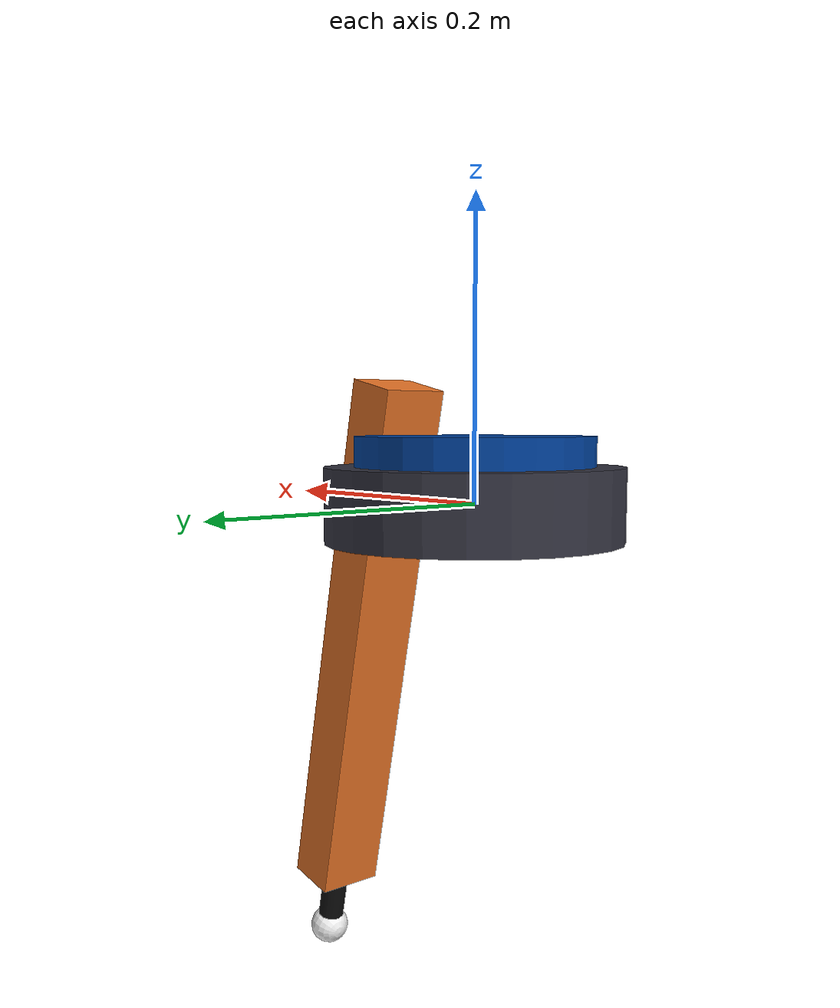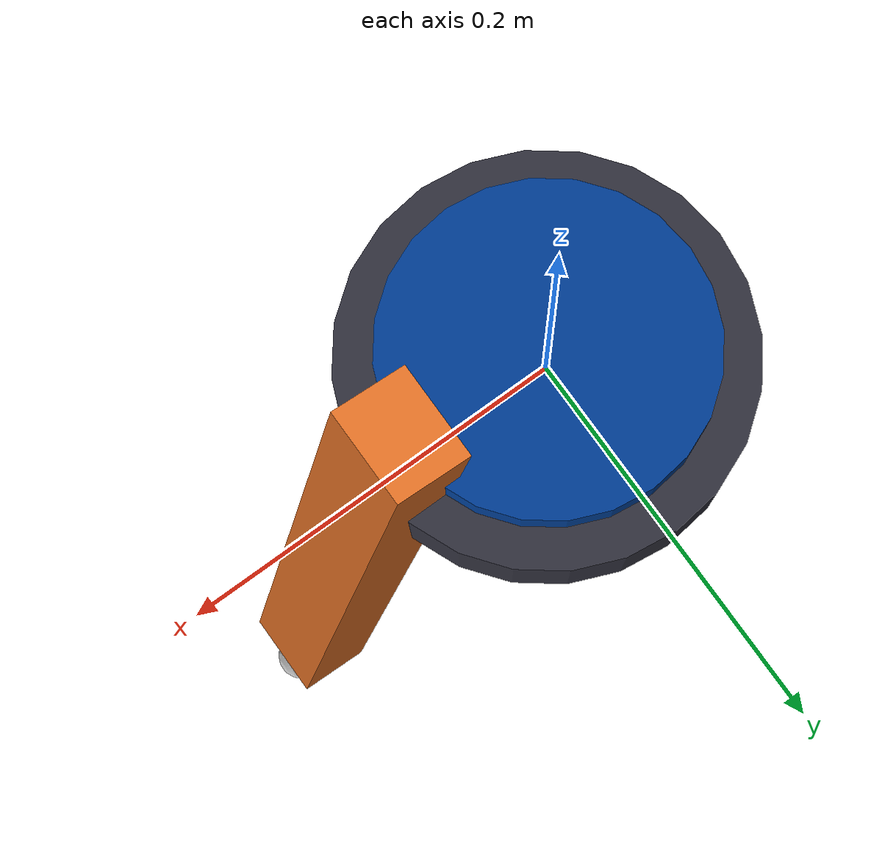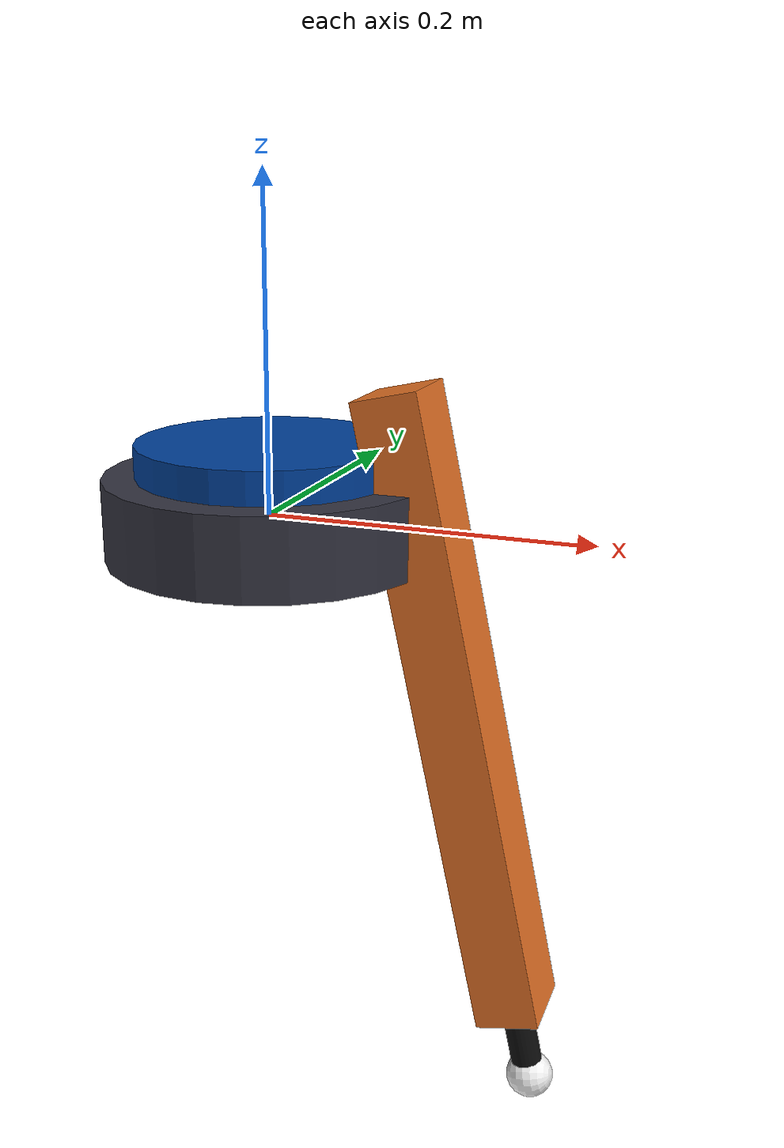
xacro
<?xml version="1.0"?>
<robot name="robot_arm" xmlns:xacro="http://www.ros.org/wiki/xacro">

  <!-- Geometry -->
  <xacro:property name="base_radius" value="0.10"/>
  <xacro:property name="base_height" value="0.05"/>
  <xacro:property name="stage_radius" value="0.08"/>
  <xacro:property name="stage_thickness" value="0.02"/>
  <xacro:property name="arm_length" value="0.40"/>
  <xacro:property name="arm_width" value="0.05"/>
  <xacro:property name="arm_thickness" value="0.04"/>
  <xacro:property name="tool_length" value="0.05"/>
  <xacro:property name="tool_radius" value="0.01"/>

  <!-- Mass approximations (kg) -->
  <xacro:property name="base_mass" value="8.0"/>
  <xacro:property name="stage_mass" value="3.0"/>
  <xacro:property name="arm_mass" value="1.2"/>
  <xacro:property name="tool_mass" value="0.2"/>

  <!-- Joint limits -->
  <xacro:property name="base_rotation_limit" value="3.14159"/>
  <xacro:property name="pivot_min_deg" value="25.0"/>
  <xacro:property name="pivot_max_deg" value="130.0"/>
  <xacro:property name="pivot_min_rad" value="${pivot_min_deg * pi / 180.0}"/>
  <xacro:property name="pivot_max_rad" value="${pivot_max_deg * pi / 180.0}"/>
  <xacro:property name="pivot_mid_rad" value="${0.5 * (pivot_min_rad + pivot_max_rad)}"/>
  <xacro:property name="pivot_span_half" value="${0.5 * (pivot_max_rad - pivot_min_rad)}"/>
  <xacro:property name="pivot_lower" value="${-pivot_span_half}"/>
  <xacro:property name="pivot_upper" value="${pivot_span_half}"/>

  <!-- Helpers -->
  <xacro:macro name="inertial_box" params="mass x y z">
    <inertial>
      <mass value="${mass}"/>
      <origin xyz="0 0 0" rpy="0 0 0"/>
      <inertia
        ixx="${mass / 12.0 * (y*y + z*z)}"
        iyy="${mass / 12.0 * (x*x + z*z)}"
        izz="${mass / 12.0 * (x*x + y*y)}"
        ixy="0" ixz="0" iyz="0"/>
    </inertial>
  </xacro:macro>

  <xacro:macro name="inertial_cylinder" params="mass radius length">
    <inertial>
      <mass value="${mass}"/>
      <origin xyz="0 0 0" rpy="0 0 0"/>
      <inertia
        ixx="${mass / 12.0 * (3 * radius*radius + length*length)}"
        iyy="${mass / 12.0 * (3 * radius*radius + length*length)}"
        izz="${0.5 * mass * radius*radius}"
        ixy="0" ixz="0" iyz="0"/>
    </inertial>
  </xacro:macro>

  <!-- Base link -->
  <link name="base_link">
    <visual>
      <geometry>
        <cylinder radius="${base_radius}" length="${base_height}"/>
      </geometry>
      <material name="BaseGrey">
        <color rgba="0.2 0.2 0.25 1.0"/>
      </material>
    </visual>
    <collision>
      <geometry>
        <cylinder radius="${base_radius}" length="${base_height}"/>
      </geometry>
    </collision>
    <xacro:inertial_cylinder mass="${base_mass}" radius="${base_radius}" length="${base_height}"/>
  </link>

  <!-- Rotating stage -->
  <joint name="base_rotation" type="continuous">
    <parent link="base_link"/>
    <child link="rotating_stage"/>
    <origin xyz="0 0 ${base_height/2 + stage_thickness/2}" rpy="0 0 0"/>
    <axis xyz="0 0 1"/>
    <limit lower="-${base_rotation_limit}" upper="${base_rotation_limit}" effort="20.0" velocity="1.57"/>
    <dynamics damping="0.05" friction="0.0"/>
  </joint>

  <link name="rotating_stage">
    <visual>
      <geometry>
        <cylinder radius="${stage_radius}" length="${stage_thickness}"/>
      </geometry>
      <material name="StageBlue">
        <color rgba="0.0 0.25 0.6 1.0"/>
      </material>
    </visual>
    <collision>
      <geometry>
        <cylinder radius="${stage_radius}" length="${stage_thickness}"/>
      </geometry>
    </collision>
    <xacro:inertial_cylinder mass="${stage_mass}" radius="${stage_radius}" length="${stage_thickness}"/>
  </link>

  <!-- Arm pivot located at stage perimeter -->
  <joint name="arm_pivot" type="revolute">
    <parent link="rotating_stage"/>
    <child link="arm_link"/>
    <origin
      xyz="${stage_radius} 0 ${base_height/2 + stage_thickness}"
      rpy="0 ${pivot_mid_rad} 0"/>
    <axis xyz="0 1 0"/>
    <limit lower="${pivot_lower}" upper="${pivot_upper}" effort="15.0" velocity="1.0"/>
    <dynamics damping="0.05" friction="0.0"/>
  </joint>

  <link name="arm_link">
    <visual>
      <origin xyz="${arm_length/2} 0 0" rpy="0 0 0"/>
      <geometry>
        <box size="${arm_length} ${arm_width} ${arm_thickness}"/>
      </geometry>
      <material name="ArmOrange">
        <color rgba="0.9 0.45 0.15 1.0"/>
      </material>
    </visual>
    <collision>
      <origin xyz="${arm_length/2} 0 0" rpy="0 0 0"/>
      <geometry>
        <box size="${arm_length} ${arm_width} ${arm_thickness}"/>
      </geometry>
    </collision>
    <xacro:inertial_box mass="${arm_mass}" x="${arm_length}" y="${arm_width}" z="${arm_thickness}"/>
  </link>

  <!-- Tooling stub -->
  <joint name="end_effector_joint" type="fixed">
    <parent link="arm_link"/>
    <child link="end_effector"/>
    <origin xyz="${arm_length} 0 0" rpy="0 0 0"/>
  </joint>

  <link name="end_effector">
    <visual>
      <origin xyz="${tool_length/2} 0 0" rpy="0 ${pi/2} 0"/>
      <geometry>
        <cylinder radius="${tool_radius}" length="${tool_length}"/>
      </geometry>
      <material name="ToolBlack">
        <color rgba="0.05 0.05 0.05 1.0"/>
      </material>
    </visual>
    <collision>
      <origin xyz="${tool_length/2} 0 0" rpy="0 ${pi/2} 0"/>
      <geometry>
        <cylinder radius="${tool_radius}" length="${tool_length}"/>
      </geometry>
    </collision>
    <xacro:inertial_cylinder mass="${tool_mass}" radius="${tool_radius}" length="${tool_length}"/>
  </link>

  <joint name="tool_tip_joint" type="fixed">
    <parent link="end_effector"/>
    <child link="tool_tip"/>
    <origin xyz="${tool_length} 0 0" rpy="0 0 0"/>
  </joint>

  <link name="tool_tip">
    <visual>
      <geometry>
        <sphere radius="0.015"/>
      </geometry>
      <material name="TipWhite">
        <color rgba="0.95 0.95 0.95 1.0"/>
      </material>
    </visual>
    <collision>
      <geometry>
        <sphere radius="0.015"/>
      </geometry>
    </collision>
    <xacro:inertial_box mass="0.05" x="0.03" y="0.03" z="0.03"/>
  </link>

</robot>
